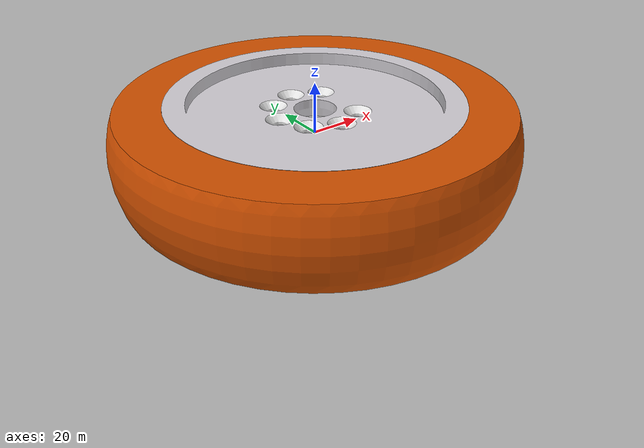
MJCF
<mujoco model="diff_wheel">
  <default>
    <default class="visual">
      <geom group="2" type="mesh" contype="0" conaffinity="0"/>
    </default>
    <default class="collision">
      <geom group="3" type="mesh"/>
    </default>
  </default>
  <asset>
    <material name="material_diff_wheel_0" specular="0.20000000000000004" shininess="1.0" rgba="0.81176471 0.30980392 0.00000000 1.0"/>
    <material name="material_diff_wheel_1" specular="0.20000000000000004" shininess="1.0" rgba="0.89803922 0.89803922 0.89803922 1.0"/>
    <material name="material_diff_wheel_2" specular="0.20000000000000004" shininess="1.0" rgba="0.81176471 0.80000000 0.82352941 1.0"/>
    <mesh file="diff_wheel_0.obj"/>
    <mesh file="diff_wheel_1.obj"/>
    <mesh file="diff_wheel_2.obj"/>
  </asset>
  <worldbody>
    <body name="diff_wheel">
      <geom mesh="diff_wheel_0" material="material_diff_wheel_2" class="visual"/>
      <geom mesh="diff_wheel_1" material="material_diff_wheel_1" class="visual"/>
      <geom mesh="diff_wheel_2" material="material_diff_wheel_0" class="visual"/>
      <geom mesh="diff_wheel_0" class="collision"/>
      <geom mesh="diff_wheel_1" class="collision"/>
      <geom mesh="diff_wheel_2" class="collision"/>
    </body>
  </worldbody>
</mujoco>
